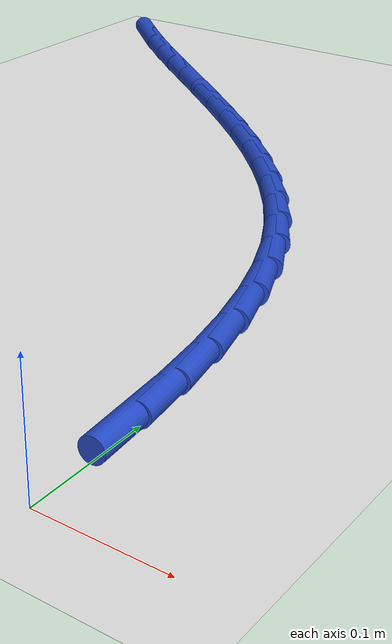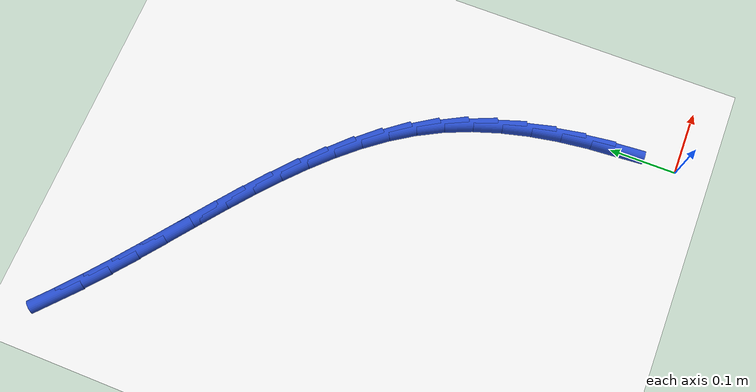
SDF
<sdf version="1.6">
 <world name="default">
  <model name="ground_plane">
   <static>1</static>
   <link name="link">
    <collision name="collision">
     <geometry><plane><normal>0 0 1</normal><size>100 100</size></plane></geometry>
     <surface><friction><ode><mu>100</mu><mu2>50</mu2></ode></friction></surface>
    </collision>
    <visual name="visual">
     <cast_shadows>0</cast_shadows>
     <geometry><plane><normal>0 0 1</normal><size>100 100</size></plane></geometry>
     <material>
      <script><uri>file://media/materials/scripts/gazebo.material</uri><name>Gazebo/WhiteGlow</name></script>
     </material>
    </visual>
   </link>
  </model>
  <model name="line">
   <link name="link_2">
    <pose>-0.0011294753077593519 0.09135666024666762 0.01 0 1.57 -1.4943491797490966</pose>
    <collision name="collision">
     <geometry><cylinder><radius>0.01</radius><length>0.08</length></cylinder></geometry>
    </collision>
    <visual name="visual">
     <material>
      <script><name>Gazebo/Blue</name><uri>file://media/materials/scripts/gazebo.material</uri></script>
     </material>
     <geometry><cylinder><radius>0.01</radius><length>0.08</length></cylinder></geometry>
    </visual>
   </link>
   <link name="link_3">
    <pose>-0.004588734428026658 0.1365188121148037 0.01 0 1.57 -1.4432445517743702</pose>
    <collision name="collision">
     <geometry><cylinder><radius>0.01</radius><length>0.08</length></cylinder></geometry>
    </collision>
    <visual name="visual">
     <material>
      <script><name>Gazebo/Blue</name><uri>file://media/materials/scripts/gazebo.material</uri></script>
     </material>
     <geometry><cylinder><radius>0.01</radius><length>0.08</length></cylinder></geometry>
    </visual>
   </link>
   <link name="link_4">
    <pose>-0.010293498151438294 0.1810010807061855 0.01 0 1.57 -1.3849735988600718</pose>
    <collision name="collision">
     <geometry><cylinder><radius>0.01</radius><length>0.08</length></cylinder></geometry>
    </collision>
    <visual name="visual">
     <material>
      <script><name>Gazebo/Blue</name><uri>file://media/materials/scripts/gazebo.material</uri></script>
     </material>
     <geometry><cylinder><radius>0.01</radius><length>0.08</length></cylinder></geometry>
    </visual>
   </link>
   <link name="link_5">
    <pose>-0.018480634197158667 0.22455164269084613 0.01 0 1.57 -1.3188407802872344</pose>
    <collision name="collision">
     <geometry><cylinder><radius>0.01</radius><length>0.08</length></cylinder></geometry>
    </collision>
    <visual name="visual">
     <material>
      <script><name>Gazebo/Blue</name><uri>file://media/materials/scripts/gazebo.material</uri></script>
     </material>
     <geometry><cylinder><radius>0.01</radius><length>0.08</length></cylinder></geometry>
    </visual>
   </link>
   <link name="link_6">
    <pose>-0.02938701028435222 0.2669186747388188 0.01 0 1.57 -1.2442471507943729</pose>
    <collision name="collision">
     <geometry><cylinder><radius>0.01</radius><length>0.08</length></cylinder></geometry>
    </collision>
    <visual name="visual">
     <material>
      <script><name>Gazebo/Blue</name><uri>file://media/materials/scripts/gazebo.material</uri></script>
     </material>
     <geometry><cylinder><radius>0.01</radius><length>0.08</length></cylinder></geometry>
    </visual>
   </link>
   <link name="link_7">
    <pose>-0.04324949413218336 0.3078503535201366 0.01 0 1.57 -1.1608268885653494</pose>
    <collision name="collision">
     <geometry><cylinder><radius>0.01</radius><length>0.08</length></cylinder></geometry>
    </collision>
    <visual name="visual">
     <material>
      <script><name>Gazebo/Blue</name><uri>file://media/materials/scripts/gazebo.material</uri></script>
     </material>
     <geometry><cylinder><radius>0.01</radius><length>0.08</length></cylinder></geometry>
    </visual>
   </link>
   <link name="link_8">
    <pose>-0.06030495345981654 0.3470948557048328 0.01 0 1.57 -1.0693661160491303</pose>
    <collision name="collision">
     <geometry><cylinder><radius>0.01</radius><length>0.08</length></cylinder></geometry>
    </collision>
    <visual name="visual">
     <material>
      <script><name>Gazebo/Blue</name><uri>file://media/materials/scripts/gazebo.material</uri></script>
     </material>
     <geometry><cylinder><radius>0.01</radius><length>0.08</length></cylinder></geometry>
    </visual>
   </link>
   <link name="link_9">
    <pose>-0.08076458907264737 0.38441899184581674 0.01 0 1.57 -0.9805450336766767</pose>
    <collision name="collision">
     <geometry><cylinder><radius>0.01</radius><length>0.08</length></cylinder></geometry>
    </collision>
    <visual name="visual">
     <material>
      <script><name>Gazebo/Blue</name><uri>file://media/materials/scripts/gazebo.material</uri></script>
     </material>
     <geometry><cylinder><radius>0.01</radius><length>0.08</length></cylinder></geometry>
    </visual>
   </link>
   <link name="link_10">
    <pose>-0.104494092268519 0.41984040840694775 0.01 0 1.57 -0.9025146169969304</pose>
    <collision name="collision">
     <geometry><cylinder><radius>0.01</radius><length>0.08</length></cylinder></geometry>
    </collision>
    <visual name="visual">
     <material>
      <script><name>Gazebo/Blue</name><uri>file://media/materials/scripts/gazebo.material</uri></script>
     </material>
     <geometry><cylinder><radius>0.01</radius><length>0.08</length></cylinder></geometry>
    </visual>
   </link>
   <link name="link_11">
    <pose>-0.13111161044921454 0.45355646586084775 0.01 0 1.57 -0.8357983809403094</pose>
    <collision name="collision">
     <geometry><cylinder><radius>0.01</radius><length>0.08</length></cylinder></geometry>
    </collision>
    <visual name="visual">
     <material>
      <script><name>Gazebo/Blue</name><uri>file://media/materials/scripts/gazebo.material</uri></script>
     </material>
     <geometry><cylinder><radius>0.01</radius><length>0.08</length></cylinder></geometry>
    </visual>
   </link>
   <link name="link_12">
    <pose>-0.16022990263379863 0.48576843658374286 0.01 0 1.57 -0.780205681217164</pose>
    <collision name="collision">
     <geometry><cylinder><radius>0.01</radius><length>0.08</length></cylinder></geometry>
    </collision>
    <visual name="visual">
     <material>
      <script><name>Gazebo/Blue</name><uri>file://media/materials/scripts/gazebo.material</uri></script>
     </material>
     <geometry><cylinder><radius>0.01</radius><length>0.08</length></cylinder></geometry>
    </visual>
   </link>
   <link name="link_13">
    <pose>-0.19146172784133583 0.5166775929518593 0.01 0 1.57 -0.735245622004954</pose>
    <collision name="collision">
     <geometry><cylinder><radius>0.01</radius><length>0.08</length></cylinder></geometry>
    </collision>
    <visual name="visual">
     <material>
      <script><name>Gazebo/Blue</name><uri>file://media/materials/scripts/gazebo.material</uri></script>
     </material>
     <geometry><cylinder><radius>0.01</radius><length>0.08</length></cylinder></geometry>
    </visual>
   </link>
   <link name="link_14">
    <pose>-0.2244198450908904 0.5464852073414233 0.01 0 1.57 -0.7003280463009329</pose>
    <collision name="collision">
     <geometry><cylinder><radius>0.01</radius><length>0.08</length></cylinder></geometry>
    </collision>
    <visual name="visual">
     <material>
      <script><name>Gazebo/Blue</name><uri>file://media/materials/scripts/gazebo.material</uri></script>
     </material>
     <geometry><cylinder><radius>0.01</radius><length>0.08</length></cylinder></geometry>
    </visual>
   </link>
   <link name="link_15">
    <pose>-0.2587170134015271 0.5753925521286607 0.01 0 1.57 -0.6748994606768268</pose>
    <collision name="collision">
     <geometry><cylinder><radius>0.01</radius><length>0.08</length></cylinder></geometry>
    </collision>
    <visual name="visual">
     <material>
      <script><name>Gazebo/Blue</name><uri>file://media/materials/scripts/gazebo.material</uri></script>
     </material>
     <geometry><cylinder><radius>0.01</radius><length>0.08</length></cylinder></geometry>
    </visual>
   </link>
   <link name="link_16">
    <pose>-0.2939659917923105 0.603600899689798 0.01 0 1.57 -0.6585267353213015</pose>
    <collision name="collision">
     <geometry><cylinder><radius>0.01</radius><length>0.08</length></cylinder></geometry>
    </collision>
    <visual name="visual">
     <material>
      <script><name>Gazebo/Blue</name><uri>file://media/materials/scripts/gazebo.material</uri></script>
     </material>
     <geometry><cylinder><radius>0.01</radius><length>0.08</length></cylinder></geometry>
    </visual>
   </link>
   <link name="link_17">
    <pose>-0.3297795392823049 0.631311522401061 0.01 0 1.57 -0.6509457518003419</pose>
    <collision name="collision">
     <geometry><cylinder><radius>0.01</radius><length>0.08</length></cylinder></geometry>
    </collision>
    <visual name="visual">
     <material>
      <script><name>Gazebo/Blue</name><uri>file://media/materials/scripts/gazebo.material</uri></script>
     </material>
     <geometry><cylinder><radius>0.01</radius><length>0.08</length></cylinder></geometry>
    </visual>
   </link>
   <link name="link_18">
    <pose>-0.3657704148905749 0.6587256926386761 0.01 0 1.57 -0.6520892452074681</pose>
    <collision name="collision">
     <geometry><cylinder><radius>0.01</radius><length>0.08</length></cylinder></geometry>
    </collision>
    <visual name="visual">
     <material>
      <script><name>Gazebo/Blue</name><uri>file://media/materials/scripts/gazebo.material</uri></script>
     </material>
     <geometry><cylinder><radius>0.01</radius><length>0.08</length></cylinder></geometry>
    </visual>
   </link>
   <link name="link_19">
    <pose>-0.40155137763618504 0.6860446827788694 0.01 0 1.57 -0.6621030343846273</pose>
    <collision name="collision">
     <geometry><cylinder><radius>0.01</radius><length>0.08</length></cylinder></geometry>
    </collision>
    <visual name="visual">
     <material>
      <script><name>Gazebo/Blue</name><uri>file://media/materials/scripts/gazebo.material</uri></script>
     </material>
     <geometry><cylinder><radius>0.01</radius><length>0.08</length></cylinder></geometry>
    </visual>
   </link>
   <link name="link_20">
    <pose>-0.4367351865381998 0.7134697651978669 0.01 0 1.57 -0.6812596897858104</pose>
    <collision name="collision">
     <geometry><cylinder><radius>0.01</radius><length>0.08</length></cylinder></geometry>
    </collision>
    <visual name="visual">
     <material>
      <script><name>Gazebo/Blue</name><uri>file://media/materials/scripts/gazebo.material</uri></script>
     </material>
     <geometry><cylinder><radius>0.01</radius><length>0.08</length></cylinder></geometry>
    </visual>
   </link>
   <link name="link_21">
    <pose>-0.4709403775161572 0.7412015192357346 0.01 0 1.57 -0.705810102198115</pose>
    <collision name="collision">
     <geometry><cylinder><radius>0.01</radius><length>0.08</length></cylinder></geometry>
    </collision>
    <visual name="visual">
     <material>
      <script><name>Gazebo/Blue</name><uri>file://media/materials/scripts/gazebo.material</uri></script>
     </material>
     <geometry><cylinder><radius>0.01</radius><length>0.08</length></cylinder></geometry>
    </visual>
   </link>
   <link name="link_22">
    <pose>-0.5040386381169503 0.7694101544464262 0.01 0 1.57 -0.729816989768914</pose>
    <collision name="collision">
     <geometry><cylinder><radius>0.01</radius><length>0.08</length></cylinder></geometry>
    </collision>
    <visual name="visual">
     <material>
      <script><name>Gazebo/Blue</name><uri>file://media/materials/scripts/gazebo.material</uri></script>
     </material>
     <geometry><cylinder><radius>0.01</radius><length>0.08</length></cylinder></geometry>
    </visual>
   </link>
  </model>
 </world>
</sdf>
